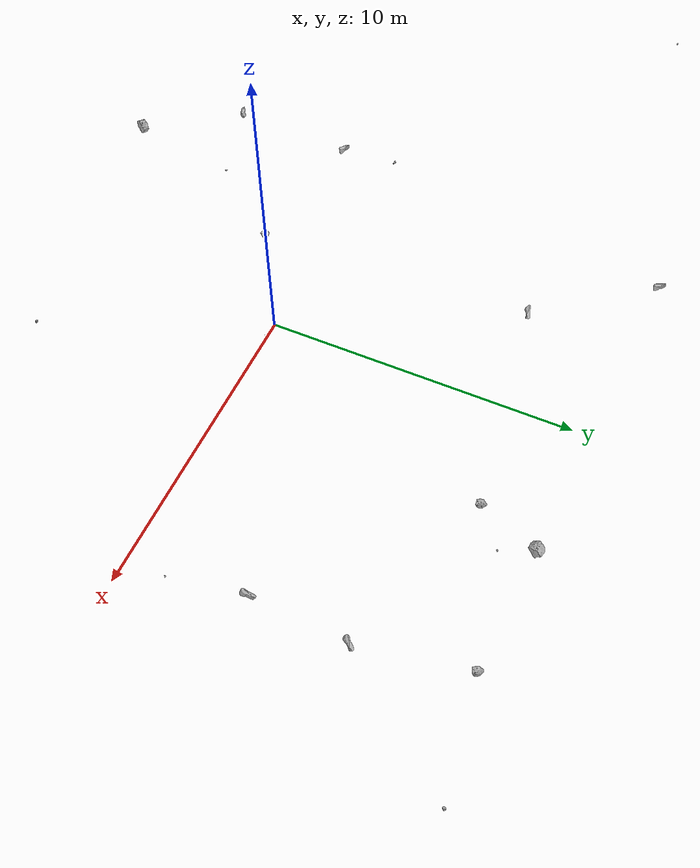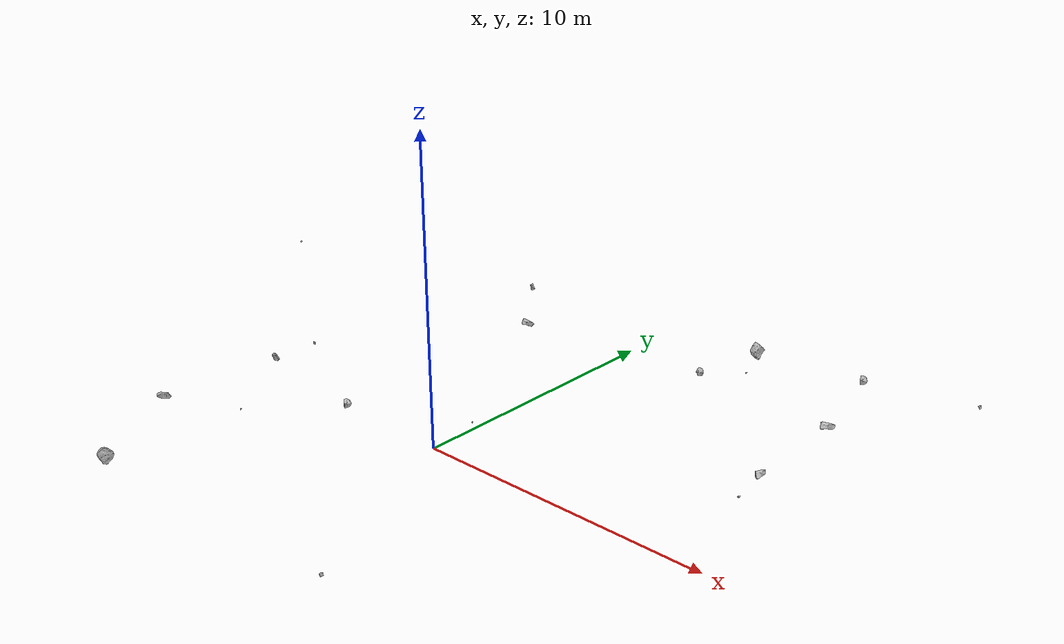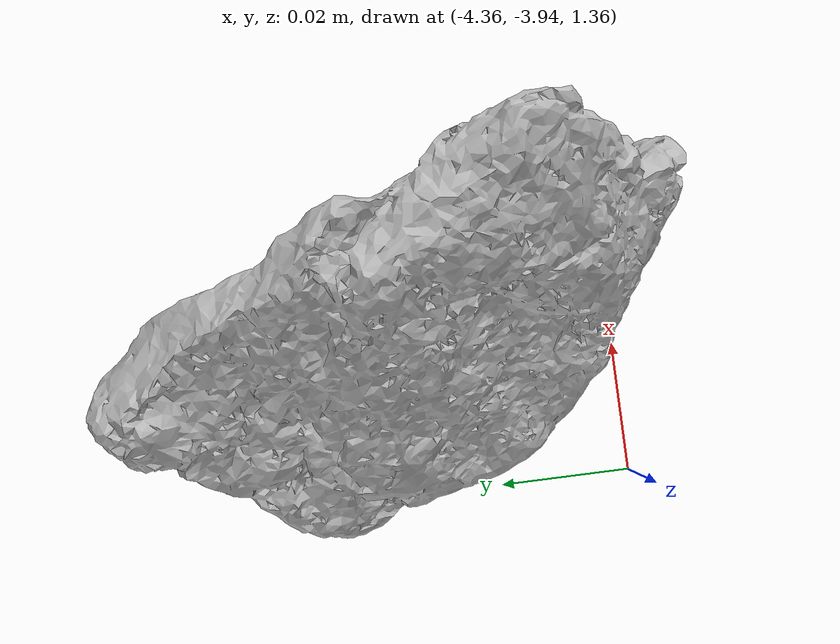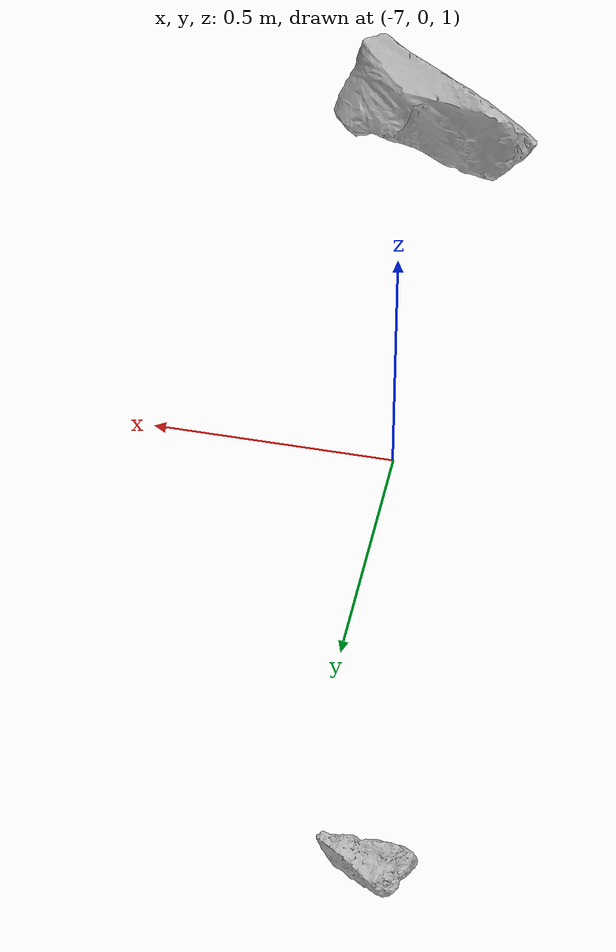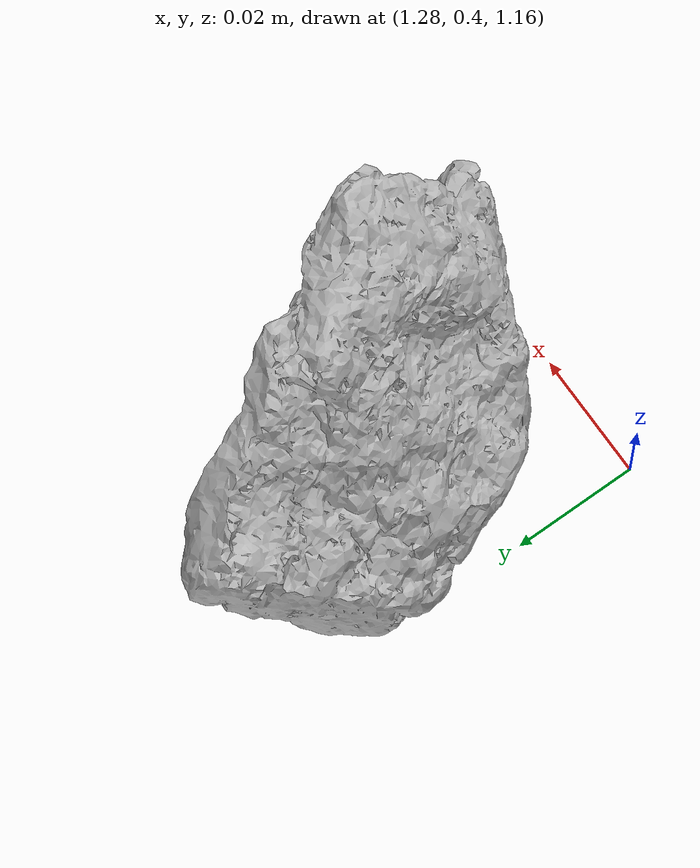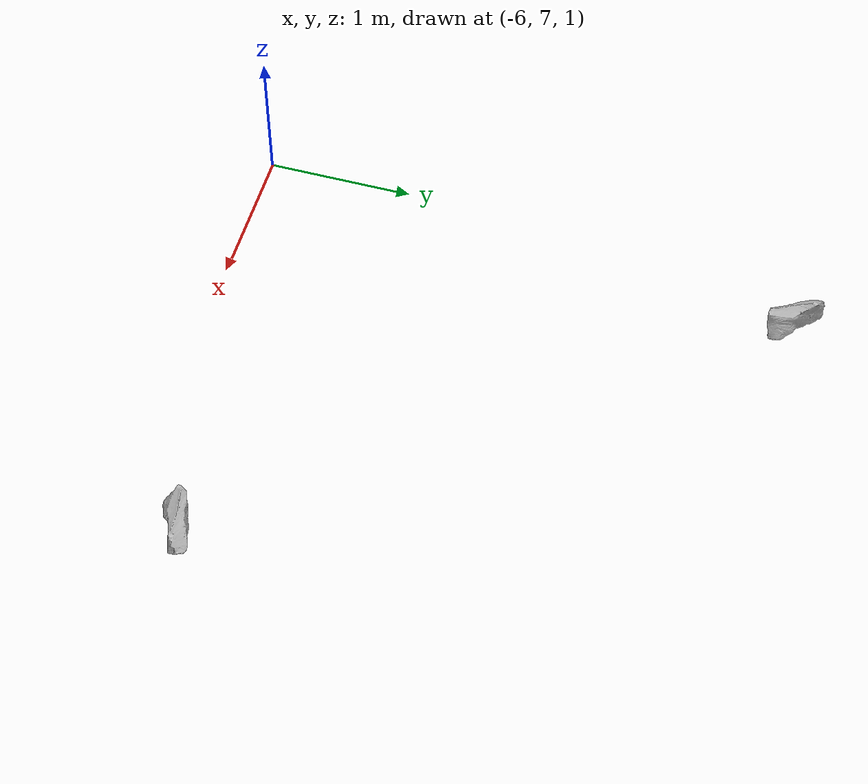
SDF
<sdf version="1.7">
 <world name="marsyard">
  <gravity>0 0 -9.81</gravity>
  <physics name="dart_physics" type="ignored">
   <max_step_size>0.003</max_step_size>
   <real_time_update_rate>333</real_time_update_rate>
   <real_time_factor>1.0</real_time_factor>
  </physics>
  <plugin filename="ignition-gazebo-physics-system" name="ignition::gazebo::systems::Physics"/>
  <plugin filename="ignition-gazebo-user-commands-system" name="ignition::gazebo::systems::UserCommands"/>
  <plugin filename="ignition-gazebo-scene-broadcaster-system" name="ignition::gazebo::systems::SceneBroadcaster"/>
  <plugin filename="ignition-gazebo-contact-system" name="ignition::gazebo::systems::Contact"/>
  <plugin filename="ignition-gazebo-sensors-system" name="ignition::gazebo::systems::Sensors">
   <render_engine>ogre2</render_engine>
  </plugin>
  <plugin filename="ignition-gazebo-imu-system" name="ignition::gazebo::systems::Imu"/>
  <plugin filename="ignition-gazebo-magnetometer-system" name="ignition::gazebo::systems::Magnetometer"/>
  <scene>
   <ambient>0.95 0.95 0.95 1</ambient>
   <background>0.70 0.70 0.70 1</background>
   <shadows>false</shadows>
  </scene>
  <light type="directional" name="sun">
   <cast_shadows>false</cast_shadows>
   <pose>0 0 30 0 0 0</pose>
   <diffuse>1 1 1 1</diffuse>
   <specular>0.15 0.15 0.15 1</specular>
   <direction>-0.35 0.1 -0.93</direction>
  </light>
  <model name="Rock_1">
   <static>true</static>
   <pose>12.5815 10.9646 1.4863 0.0000 0.0000 1.0626</pose>
   <link name="link">
    <visual name="visual">
     <geometry><mesh><uri>package://rock_generator/rocks_ws/rock_9/meshes/rock_9.obj</uri></mesh></geometry>
    </visual>
   </link>
  </model>
  <model name="Rock_2">
   <static>true</static>
   <pose>-6.9707 -0.8390 1.3279 0.0000 0.0000 -0.3502</pose>
   <link name="link">
    <visual name="visual">
     <geometry><mesh><uri>package://rock_generator/rocks_ws/rock_4/meshes/rock_4.obj</uri></mesh></geometry>
    </visual>
    <collision name="collision">
     <geometry><mesh><uri>package://rock_generator/rocks_ws/rock_4/meshes/rock_4.obj</uri></mesh></geometry>
    </collision>
   </link>
  </model>
  <model name="Rock_3">
   <static>true</static>
   <pose>-5.2929 -7.8807 0.9985 0.0000 0.0000 1.1181</pose>
   <link name="link">
    <visual name="visual">
     <geometry><mesh><uri>package://rock_generator/rocks_ws/rock_1/meshes/rock_1.obj</uri></mesh></geometry>
    </visual>
   </link>
  </model>
  <model name="Rock_4">
   <static>true</static>
   <pose>-2.8560 7.4893 1.1478 0.0000 0.0000 -2.8390</pose>
   <link name="link">
    <visual name="visual">
     <geometry><mesh><uri>package://rock_generator/rocks_ws/rock_4/meshes/rock_4.obj</uri></mesh></geometry>
    </visual>
   </link>
  </model>
  <model name="Rock_6">
   <static>true</static>
   <pose>8.9191 10.3714 1.4356 0.0000 0.0000 -1.1873</pose>
   <link name="link">
    <visual name="visual">
     <geometry><mesh><uri>package://rock_generator/rocks_ws/rock_3/meshes/rock_3.obj</uri></mesh></geometry>
    </visual>
   </link>
  </model>
  <model name="Rock_8">
   <static>true</static>
   <pose>9.5258 7.1119 1.3216 0.0000 0.0000 -2.3369</pose>
   <link name="link">
    <visual name="visual">
     <geometry><mesh><uri>package://rock_generator/rocks_ws/rock_4/meshes/rock_4.obj</uri></mesh></geometry>
    </visual>
    <collision name="collision">
     <geometry><mesh><uri>package://rock_generator/rocks_ws/rock_4/meshes/rock_4.obj</uri></mesh></geometry>
    </collision>
   </link>
  </model>
  <model name="Rock_11">
   <static>true</static>
   <pose>1.3019 0.4302 1.1897 0.0000 0.0000 2.0755</pose>
   <link name="link">
    <visual name="visual">
     <geometry><mesh><uri>package://rock_generator/rocks_ws/rock_5/meshes/rock_5.obj</uri></mesh></geometry>
    </visual>
    <collision name="collision">
     <geometry><mesh><uri>package://rock_generator/rocks_ws/rock_5/meshes/rock_5.obj</uri></mesh></geometry>
    </collision>
   </link>
  </model>
  <model name="Rock_12">
   <static>true</static>
   <pose>4.8694 10.6081 1.2451 0.0000 0.0000 -1.8058</pose>
   <link name="link">
    <visual name="visual">
     <geometry><mesh><uri>package://rock_generator/rocks_ws/rock_1/meshes/rock_1.obj</uri></mesh></geometry>
    </visual>
   </link>
  </model>
  <model name="Rock_13">
   <static>true</static>
   <pose>5.2314 9.5290 0.8752 0.0000 0.0000 -2.2693</pose>
   <link name="link">
    <visual name="visual">
     <geometry><mesh><uri>package://rock_generator/rocks_ws/rock_5/meshes/rock_5.obj</uri></mesh></geometry>
    </visual>
    <collision name="collision">
     <geometry><mesh><uri>package://rock_generator/rocks_ws/rock_5/meshes/rock_5.obj</uri></mesh></geometry>
    </collision>
   </link>
  </model>
  <model name="Rock_14">
   <static>true</static>
   <pose>3.1903 -6.7789 0.3751 0.0000 0.0000 0.2798</pose>
   <link name="link">
    <visual name="visual">
     <geometry><mesh><uri>package://rock_generator/rocks_ws/rock_9/meshes/rock_9.obj</uri></mesh></geometry>
    </visual>
    <collision name="collision">
     <geometry><mesh><uri>package://rock_generator/rocks_ws/rock_9/meshes/rock_9.obj</uri></mesh></geometry>
    </collision>
   </link>
  </model>
  <model name="Rock_15">
   <static>true</static>
   <pose>-2.3863 -1.5087 1.2913 0.0000 0.0000 -0.5693</pose>
   <link name="link">
    <visual name="visual">
     <geometry><mesh><uri>package://rock_generator/rocks_ws/rock_3/meshes/rock_3.obj</uri></mesh></geometry>
    </visual>
    <collision name="collision">
     <geometry><mesh><uri>package://rock_generator/rocks_ws/rock_3/meshes/rock_3.obj</uri></mesh></geometry>
    </collision>
   </link>
  </model>
  <model name="Rock_16">
   <static>true</static>
   <pose>9.8446 1.8015 1.3967 0.0000 0.0000 0.5907</pose>
   <link name="link">
    <visual name="visual">
     <geometry><mesh><uri>package://rock_generator/rocks_ws/rock_5/meshes/rock_5.obj</uri></mesh></geometry>
    </visual>
    <collision name="collision">
     <geometry><mesh><uri>package://rock_generator/rocks_ws/rock_5/meshes/rock_5.obj</uri></mesh></geometry>
    </collision>
   </link>
  </model>
  <model name="Rock_17">
   <static>true</static>
   <pose>-7.1504 1.0141 1.1899 0.0000 0.0000 -0.2385</pose>
   <link name="link">
    <visual name="visual">
     <geometry><mesh><uri>package://rock_generator/rocks_ws/rock_6/meshes/rock_6.obj</uri></mesh></geometry>
    </visual>
   </link>
  </model>
  <model name="Rock_18">
   <static>true</static>
   <pose>-4.3347 -3.9104 1.3956 0.0000 0.0000 1.9642</pose>
   <link name="link">
    <visual name="visual">
     <geometry><mesh><uri>package://rock_generator/rocks_ws/rock_5/meshes/rock_5.obj</uri></mesh></geometry>
    </visual>
   </link>
  </model>
  <model name="Rock_20">
   <static>true</static>
   <pose>-5.7750 10.7638 0.9234 0.0000 0.0000 -0.7840</pose>
   <link name="link">
    <visual name="visual">
     <geometry><mesh><uri>package://rock_generator/rocks_ws/rock_4/meshes/rock_4.obj</uri></mesh></geometry>
    </visual>
    <collision name="collision">
     <geometry><mesh><uri>package://rock_generator/rocks_ws/rock_4/meshes/rock_4.obj</uri></mesh></geometry>
    </collision>
   </link>
  </model>
  <model name="Rock_22">
   <static>true</static>
   <pose>3.9203 8.5602 0.8379 0.0000 0.0000 -1.4278</pose>
   <link name="link">
    <visual name="visual">
     <geometry><mesh><uri>package://rock_generator/rocks_ws/rock_3/meshes/rock_3.obj</uri></mesh></geometry>
    </visual>
    <collision name="collision">
     <geometry><mesh><uri>package://rock_generator/rocks_ws/rock_3/meshes/rock_3.obj</uri></mesh></geometry>
    </collision>
   </link>
  </model>
  <model name="Rock_23">
   <static>true</static>
   <pose>-7.2173 -4.8761 1.2531 0.0000 0.0000 0.4019</pose>
   <link name="link">
    <visual name="visual">
     <geometry><mesh><uri>package://rock_generator/rocks_ws/rock_4/meshes/rock_4.obj</uri></mesh></geometry>
    </visual>
   </link>
  </model>
  <model name="Rock_26">
   <static>true</static>
   <pose>9.1584 3.9227 0.9374 0.0000 0.0000 -1.5882</pose>
   <link name="link">
    <visual name="visual">
     <geometry><mesh><uri>package://rock_generator/rocks_ws/rock_4/meshes/rock_4.obj</uri></mesh></geometry>
    </visual>
   </link>
  </model>
  <model name="Rock_27">
   <static>true</static>
   <pose>-17.2545 7.9971 1.0278 0.0000 0.0000 -2.6863</pose>
   <link name="link">
    <visual name="visual">
     <geometry><mesh><uri>package://rock_generator/rocks_ws/rock_5/meshes/rock_5.obj</uri></mesh></geometry>
    </visual>
    <collision name="collision">
     <geometry><mesh><uri>package://rock_generator/rocks_ws/rock_5/meshes/rock_5.obj</uri></mesh></geometry>
    </collision>
   </link>
  </model>
 </world>
</sdf>
